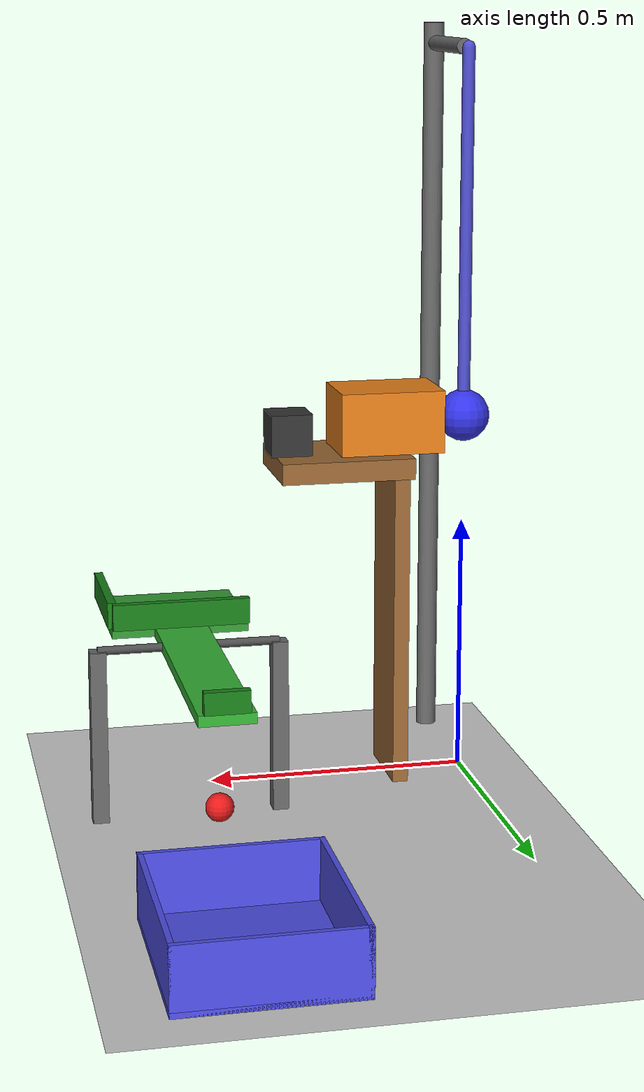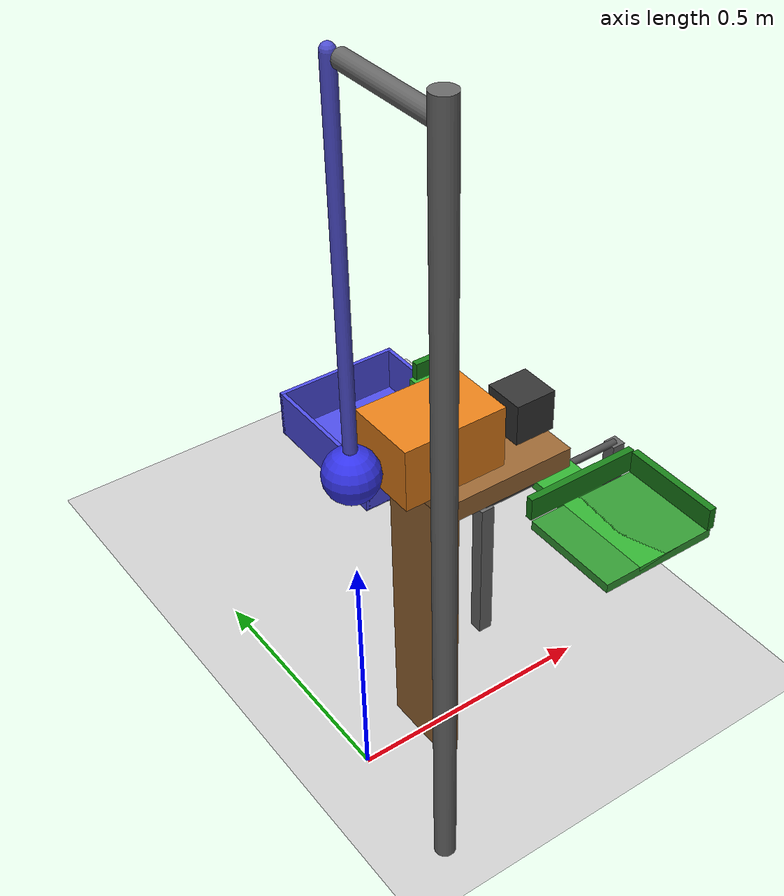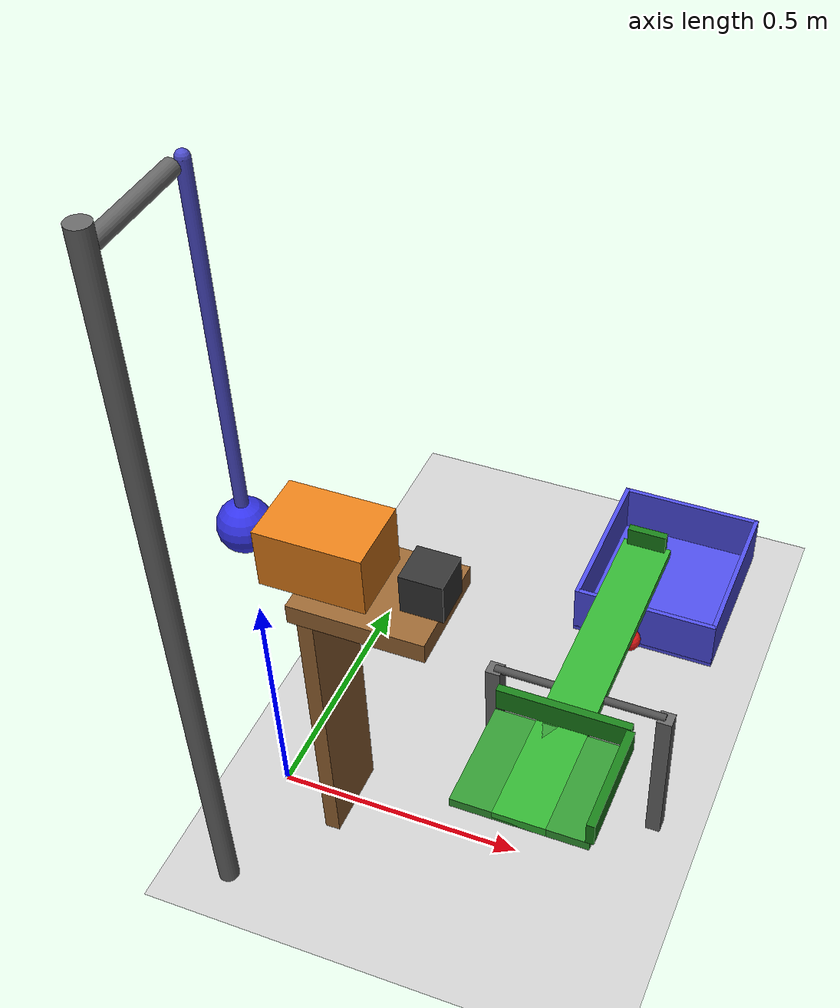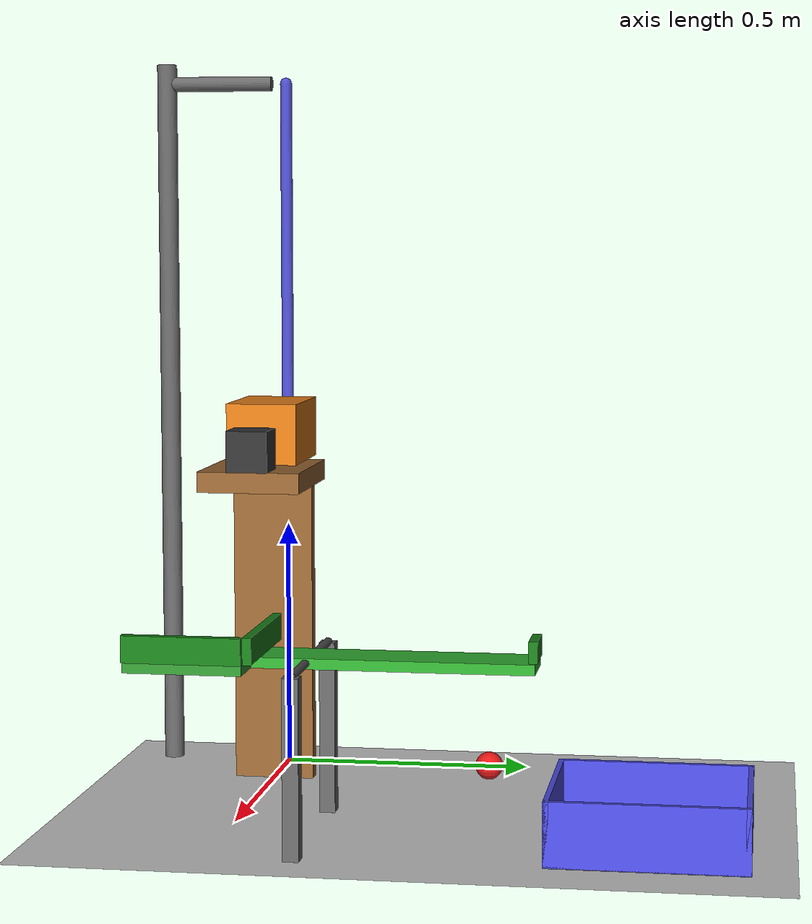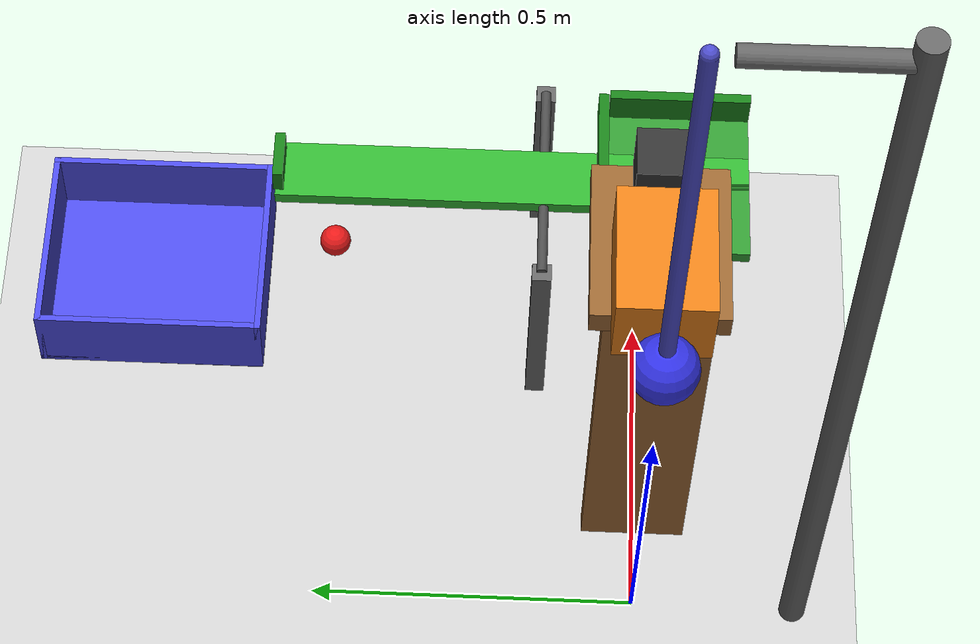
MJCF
<mujoco model="pendulum_cart_seesaw_cup">
  <compiler angle="radian"/>
  <option timestep="0.002"/>
  <worldbody>
    <light name="sun" pos="0.5 0.3 3" dir="0 0 -1" directional="true"/>
    <geom name="floor" type="plane" pos="0 0 0" size="3 3 0.1" rgba="0.8 0.8 0.8 1"/>
    <geom name="pend_post" type="cylinder" fromto="0 -0.25 0 0 -0.25 1.45" size="0.02" contype="0" conaffinity="0" rgba="0.4 0.4 0.4 1"/>
    <geom name="pend_crossbar" type="cylinder" fromto="0 -0.25 1.41 0 -0.03 1.41" size="0.015" contype="0" conaffinity="0" rgba="0.4 0.4 0.4 1"/>
    <geom name="table_top" type="box" pos="0.248 0 0.63" size="0.128 0.1 0.02" friction="0.4 0.005 0.0001" rgba="0.6 0.4 0.2 1"/>
    <geom name="table_leg" type="box" pos="0.14 0 0.305" size="0.015 0.08 0.305" contype="0" conaffinity="0" rgba="0.6 0.4 0.2 1"/>
    <geom name="seesaw_post_a" type="box" pos="0.396 0.16 0.165" size="0.015 0.015 0.165" contype="0" conaffinity="0" rgba="0.4 0.4 0.4 1"/>
    <geom name="seesaw_post_b" type="box" pos="0.736 0.16 0.165" size="0.015 0.015 0.165" contype="0" conaffinity="0" rgba="0.4 0.4 0.4 1"/>
    <geom name="seesaw_axle" type="cylinder" fromto="0.396 0.16 0.33 0.736 0.16 0.33" size="0.008" contype="0" conaffinity="0" rgba="0.3 0.3 0.3 1"/>
    <body name="pendulum" pos="0 0 1.41">
      <joint name="pendulum_hinge" type="hinge" axis="0 1 0" pos="0 0 0"/>
      <geom name="pendulum_arm" type="capsule" fromto="0 0 0 0 0 -0.65" size="0.012" mass="0.05" rgba="0.3 0.3 0.8 1"/>
      <geom name="pendulum_bob" type="sphere" pos="0 0 -0.7" size="0.05" mass="1.0" rgba="0.2 0.2 0.9 1"/>
    </body>
    <body name="cart" pos="0.156 0 0.712">
      <joint name="cart_slide" type="slide" axis="1 0 0" limited="true" range="-0.02 0.13"/>
      <geom name="cart_body" type="box" size="0.1 0.07 0.06" mass="1.5" rgba="0.9 0.5 0.1 1"/>
    </body>
    <body name="weight" pos="0.346 0 0.6905">
      <freejoint name="weight_free"/>
      <geom name="weight_block" type="box" size="0.04 0.04 0.04" mass="1.0" friction="0.4 0.005 0.0001" rgba="0.2 0.2 0.2 1"/>
    </body>
    <body name="seesaw" pos="0.566 0.16 0.33">
      <joint name="seesaw_hinge" type="hinge" axis="-1 0 0" pos="0 0 0" limited="true" range="0.2618 0.6109"/>
      <geom name="seesaw_arm" type="box" pos="0 0.05 0" size="0.05 0.37 0.01" mass="0.15" rgba="0.2 0.7 0.2 1"/>
      <geom name="seesaw_tray" type="box" pos="0 -0.21 0" size="0.13 0.11 0.01" mass="0.04" rgba="0.2 0.6 0.2 1"/>
      <geom name="seesaw_tray_inner_wall" type="box" pos="0 -0.09 0.035" size="0.13 0.008 0.025" mass="0.005" rgba="0.1 0.5 0.1 1"/>
      <geom name="seesaw_tray_side_wall" type="box" pos="0.13 -0.21 0.035" size="0.008 0.11 0.025" mass="0.005" rgba="0.1 0.5 0.1 1"/>
      <geom name="seesaw_lip" type="box" pos="0 0.415 0.03" size="0.04 0.008 0.02" mass="0.01" rgba="0.1 0.5 0.1 1"/>
    </body>
    <body name="ball" pos="0.566 0.4919 0.1415">
      <freejoint name="ball_free"/>
      <geom name="ball_geom" type="sphere" size="0.025" mass="0.03" condim="6" friction="0.8 0.01 0.003" rgba="0.9 0.1 0.1 1"/>
    </body>
    <body name="cup" pos="0 0 0">
      <geom name="cup_floor" type="box" pos="0.566 0.7875 0.005" size="0.16 0.1825 0.005" rgba="0.3 0.3 0.9 1"/>
      <geom name="cup_wall_near" type="box" pos="0.566 0.61 0.06" size="0.16 0.005 0.06" rgba="0.3 0.3 0.9 1"/>
      <geom name="cup_wall_far" type="box" pos="0.566 0.965 0.06" size="0.16 0.005 0.06" rgba="0.3 0.3 0.9 1"/>
      <geom name="cup_wall_left" type="box" pos="0.411 0.7875 0.06" size="0.005 0.1825 0.06" rgba="0.3 0.3 0.9 1"/>
      <geom name="cup_wall_right" type="box" pos="0.721 0.7875 0.06" size="0.005 0.1825 0.06" rgba="0.3 0.3 0.9 1"/>
    </body>
  </worldbody>
  <keyframe>
    <key name="start" qpos="1.427448 0 0.346 0 0.6905 1 0 0 0 0.610865 0.566 0.4919 0.1415 1 0 0 0"/>
  </keyframe>
</mujoco>
